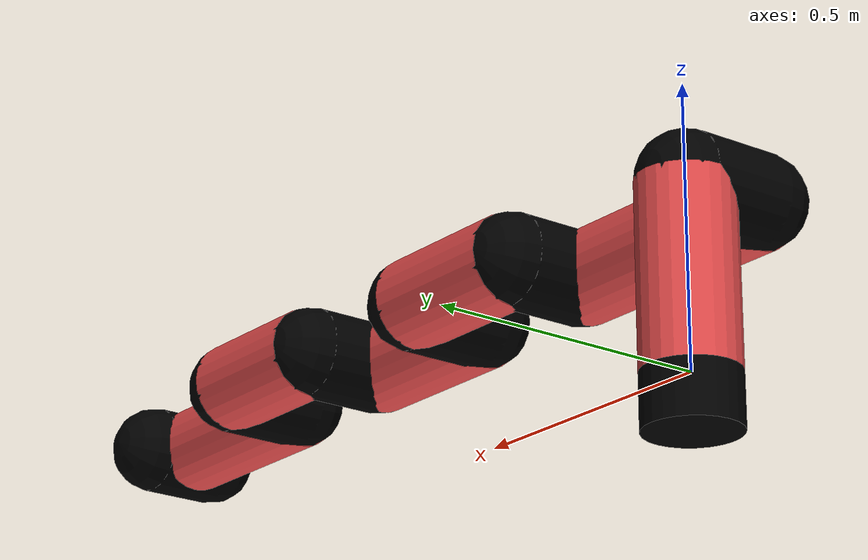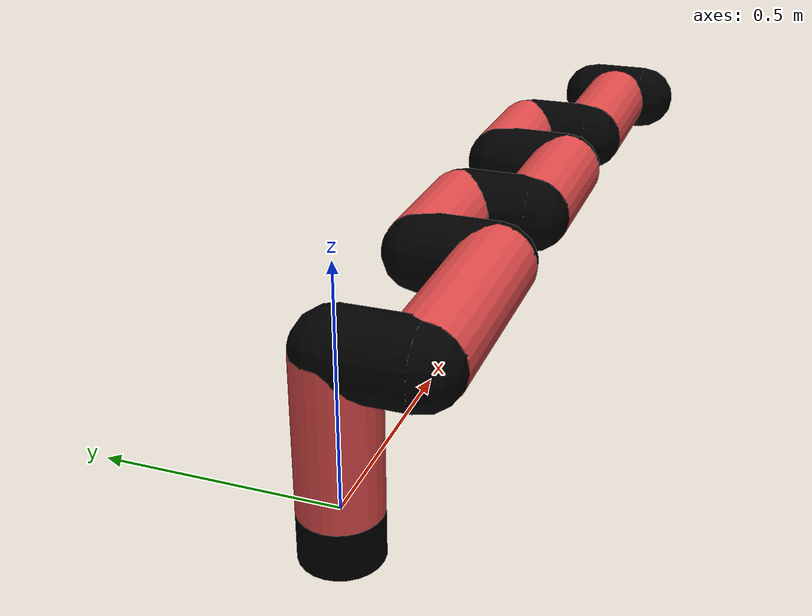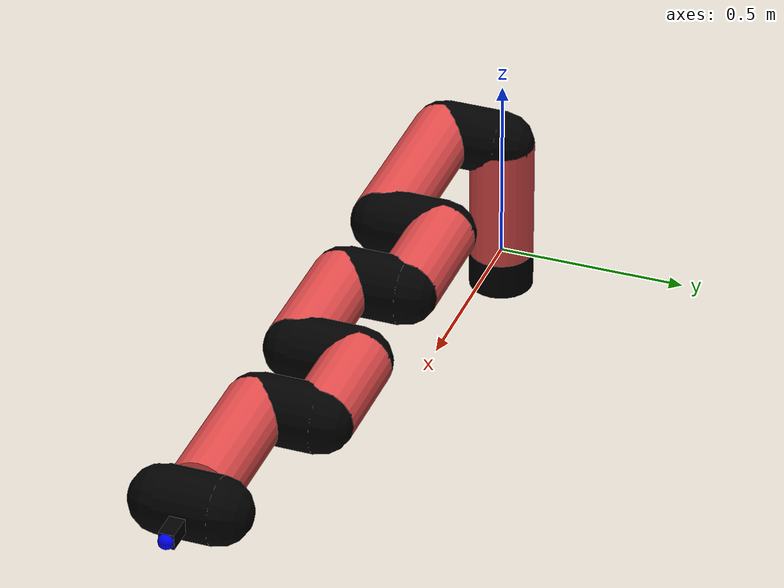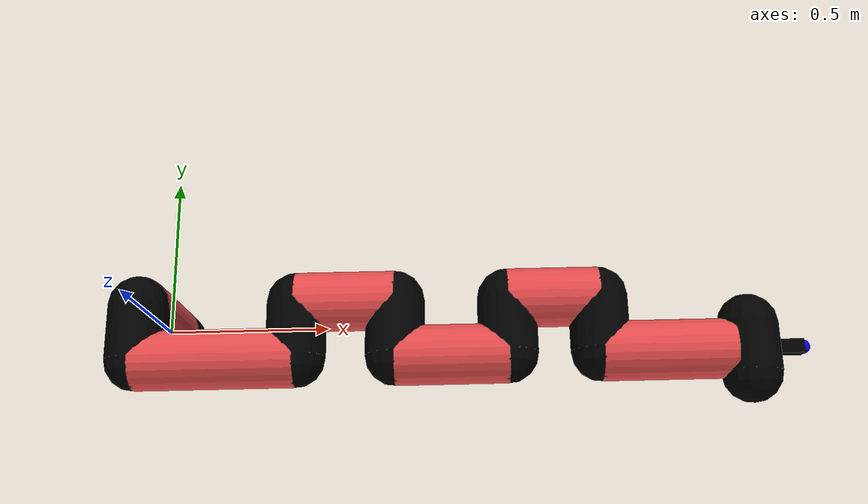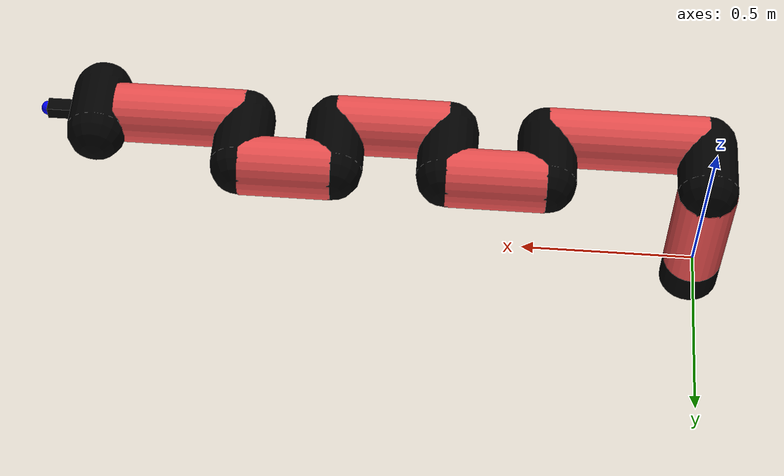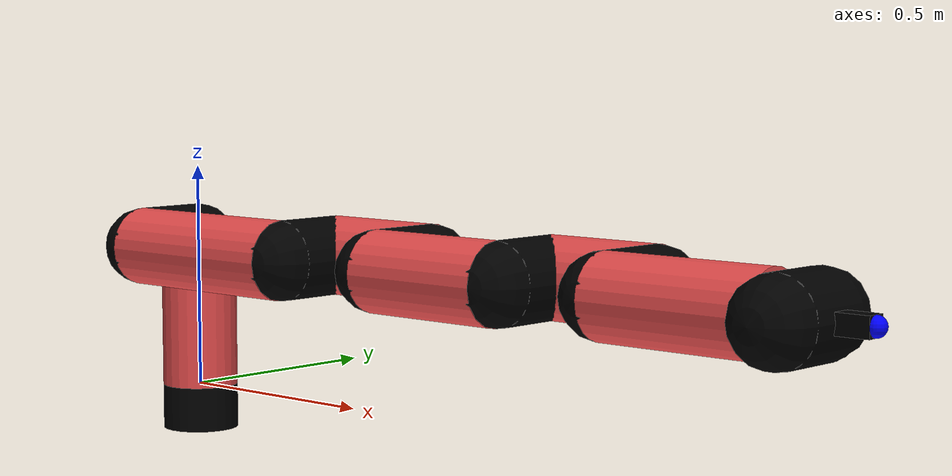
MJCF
<mujoco model="manipulator">
		<compiler angle="degree" coordinate="local" inertiafromgeom="auto" meshdir="meshes/"/>
		<option gravity="0 0 0" integrator="RK4" iterations="30" timestep="0.01"/>

		<default>
		<joint armature="1" limited="true" stiffness="10" damping="15" frictionloss="5.0"/>
		<geom conaffinity="1" condim="3" contype="1" friction=".5 .1 .1" margin="0.002"/>
		<motor ctrllimited="true"/>
		<position ctrllimited="true"/>
		</default>

		<asset>
		<texture builtin="gradient" height="100" rgb1="1.0 1.0 1.0" rgb2="1.0 1.0 1.0" type="skybox" width="100"/>
		<texture builtin="flat" height="32" name="arm_tex" rgb1="0.9 0.3 0.3" type="2d" width="32"/>
		<texture builtin="flat" height="32" name="gripper_tex" rgb1="0.0 0.0 0.0" type="cube" width="32"/>

		<material name="arm_mat" shininess="0.1" specular="0.1" texture="arm_tex"/>
		<material name="gripper_mat" shininess="1" specular="1" texture="gripper_tex"/>
		</asset>

		<worldbody>
		<light cutoff="45" diffuse=".8 .8 .8" dir="0 0.16 -1" directional="false" name="light" pos="0 -2.0 8.0" specular="0.3 0.3 0.3"/>

		<body name="base_link" pos="0 0 -0.1">
		<geom fromto="0 0 0 0 0 0.1" material="arm_mat" name="base_link" rgba="0.0 0.0 0.0 1" size="0.085" type="cylinder"/>
		</body>

		<body name="l1" pos="0 0 0">
<geom fromto="0 0 0 0 0 0.33" material="arm_mat" name="l1" rgba="0.9 0.3 0.3 1" size="0.085" type="cylinder"/>
<geom fromto="0 0 0.33 0 -0.16 0.33" material="arm_mat" name="l1_ex" rgba="0.0 0.0 0.0 1" size="0.085" type="capsule"/>
<joint axis="0 0 1" name="j1" pos="0 0 0" range="-90 90" damping="27.46" frictionloss="8.21"/>

<body name="l2" pos="0 -0.16 0.33">
<geom fromto="0 0 0 0.45 0 0" material="arm_mat" name="l2" rgba="0.9 0.3 0.3 1" size="0.085" type="cylinder"/>
<geom fromto="0.45 0 0 0.45 0.16 0" material="arm_mat" name="l2_ex" rgba="0.0 0.0 0.0 1" size="0.085" type="capsule"/>
<joint axis="0.0 1.0 0.0" name="j2" pos="0 0 0" range="-90 60" damping="34.08" frictionloss="11.93"/>

<body name="l3" pos="0.45 0.16 0">
<geom fromto="0 0 0 0.28 0 0" material="arm_mat" name="l3" rgba="0.9 0.3 0.3 1" size="0.085" type="cylinder"/>
<geom fromto="0.28 0 0 0.28 -0.16 0" material="arm_mat" name="l3_ex" rgba="0.0 0.0 0.0 1" size="0.085" type="capsule"/>
<joint axis="0.0 1.0 0.0" name="j3" pos="0 0 0" range="-30 60" damping="23.7" frictionloss="11.26"/>

<body name="l4" pos="0.28 -0.16 0">
<geom fromto="0 0 0 0.32 0 0" material="arm_mat" name="l4" rgba="0.9 0.3 0.3 1" size="0.085" type="cylinder"/>
<geom fromto="0.32 0 0 0.32 0.16 0" material="arm_mat" name="l4_ex" rgba="0.0 0.0 0.0 1" size="0.085" type="capsule"/>
<joint axis="0.0 1.0 0.0" name="j4" pos="0 0 0" range="-30 60" damping="23.04" frictionloss="8.21"/>

<body name="l5" pos="0.32 0.16 0">
<geom fromto="0 0 0 0.26 0 0" material="arm_mat" name="l5" rgba="0.9 0.3 0.3 1" size="0.085" type="cylinder"/>
<geom fromto="0.26 0 0 0.26 -0.16 0" material="arm_mat" name="l5_ex" rgba="0.0 0.0 0.0 1" size="0.085" type="capsule"/>
<joint axis="0.0 1.0 0.0" name="j5" pos="0 0 0" range="-30 60" damping="23.11" frictionloss="8.14"/>

<body name="l6" pos="0.26 -0.16 0">
<geom fromto="0 0 0 0.37 0 0" material="arm_mat" name="l6" rgba="0.9 0.3 0.3 1" size="0.085" type="cylinder"/>
<joint axis="0.0 1.0 0.0" name="j6" pos="0 0 0" range="-30 60" damping="25.66" frictionloss="8.29"/>

<body name="gripper" pos="0.37 0 0">
<geom fromto="0.05 -0.07 0 0.05 0.07 0" material="gripper_mat" name="gripper" rgba="0.0 0.0 0.0 1" size="0.085" type="capsule"/><joint axis="1 0 0" name="j7" pos="0 0 0" range="-90 90" damping="15" frictionloss="5.0"/><body name="finger" pos="0.1 0 0">
<geom fromto="0 0.0 0 0.1 0.0 0" material="gripper_mat" name="finger" rgba="0.0 0.0 0.0 1" size="0.020 0.06 0.06" type="box"/>
</body>
<site name="current" pos="0.2 0. 0.0" rgba="0. 0. 1.0 1" size="0.02" type="sphere"/>
</body>
</body>
</body>
</body>
</body>
</body>
</body>
</worldbody>
<actuator>
<motor ctrllimited="true" ctrlrange="-1.0 1.0" joint="j1" gear="96.55"/>
<motor ctrllimited="true" ctrlrange="-1.0 1.0" joint="j2" gear="74.91"/>
<motor ctrllimited="true" ctrlrange="-1.0 1.0" joint="j3" gear="65.27"/>
<motor ctrllimited="true" ctrlrange="-1.0 1.0" joint="j4" gear="89.32"/>
<motor ctrllimited="true" ctrlrange="-1.0 1.0" joint="j5" gear="69.6"/>
<motor ctrllimited="true" ctrlrange="-1.0 1.0" joint="j6" gear="67.96"/>
<motor ctrllimited="true" ctrlrange="-1.0 1.0" joint="j7" gear="80"/>
</actuator>
</mujoco>
